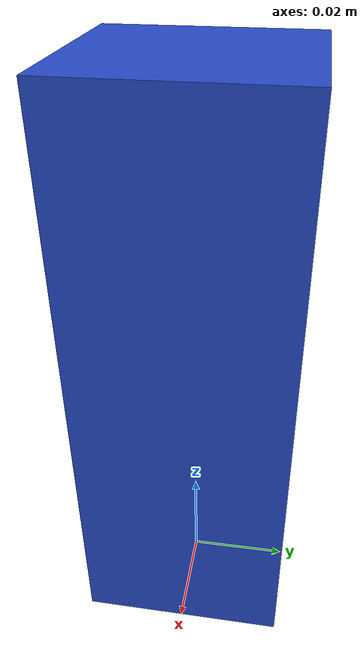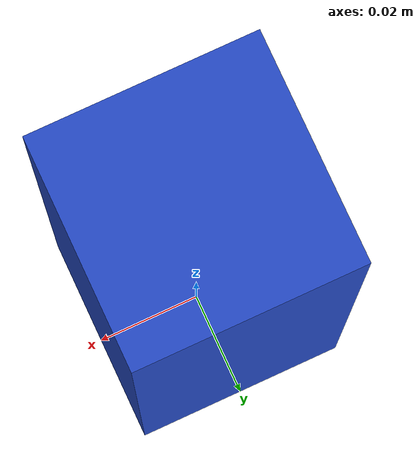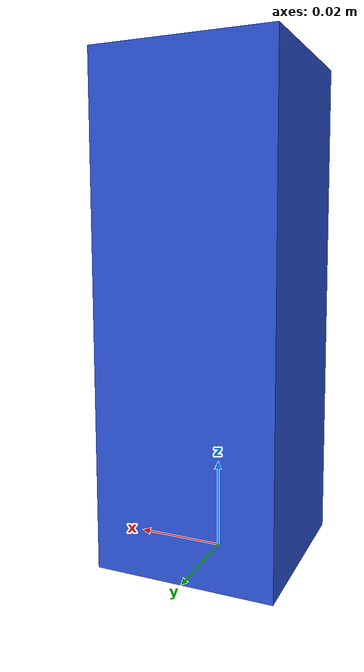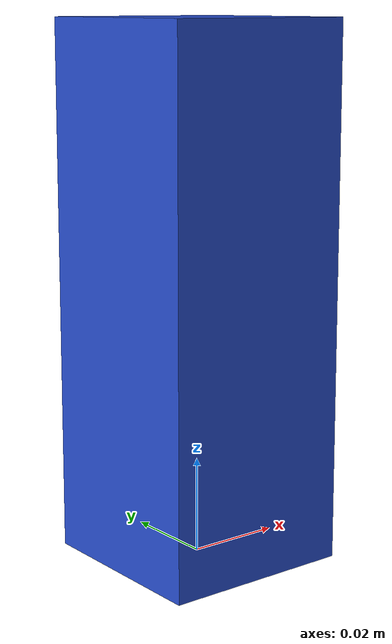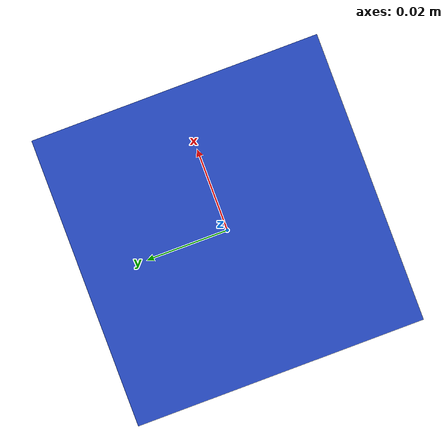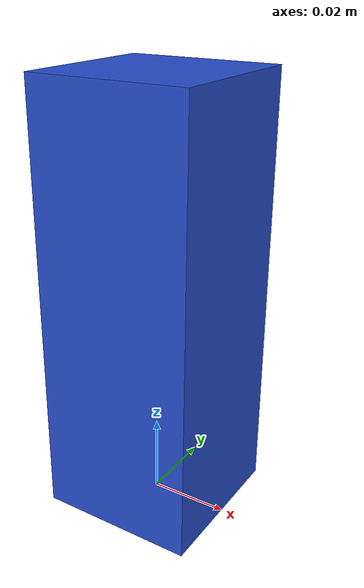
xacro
<?xml version="1.0"?>

<robot name="camera_holder"
    xmlns:sensor="http://playerstage.sourceforge.net/gazebo/xmlschema/#sensor"
    xmlns:controller="http://playerstage.sourceforge.net/gazebo/xmlschema/#controller"
    xmlns:interface="http://playerstage.sourceforge.net/gazebo/xmlschema/#interface"
    xmlns:xacro="http://playerstage.sourceforge.net/gazebo/xmlschema/#xacro">
  <link name="camera_holder">
    <inertial>
      <origin xyz="0.0 0.0 0.055" />
      <mass value="1.0" />
      <inertia  ixx="1.0" ixy="0.0"  ixz="0.0"  iyy="100.0"  iyz="0.0"  izz="1.0" />
    </inertial>
    <visual>
      <origin xyz="0.0 0.0 0.055"/>
      <geometry>
        <box size="0.04 0.04 0.11" />
      </geometry>
    </visual>
    <collision>
      <origin xyz="0.0 0.0 0.055"/>
      <geometry>
        <box size="0.04 0.04 0.11" />
      </geometry>
    </collision>
  </link>

  <gazebo reference="camera_holder">
    <material>Gazebo/Blue</material>
    <gravity>0</gravity>
    <static>true</static>
  </gazebo>
</robot>
